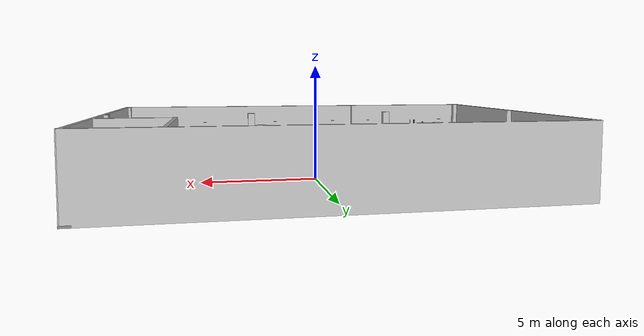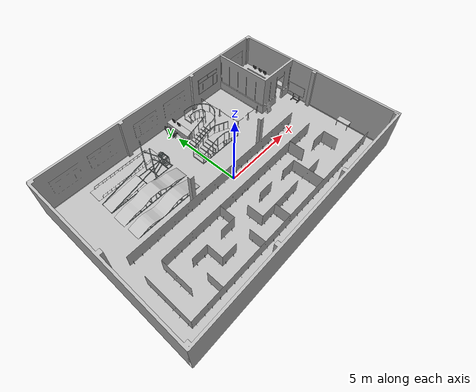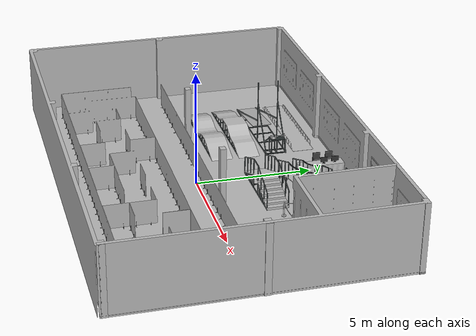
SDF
<?xml version="1.0" ?>
<sdf version="1.4">
  <model name="sai_di1">
    <link name="link1">
      <inertial>
        <mass>15</mass>
        <inertia>
          <ixx>0.0</ixx>
          <ixy>0.0</ixy>
          <ixz>0.0</ixz>
          <iyy>0.0</iyy>
          <iyz>0.0</iyz>
          <izz>0.0</izz>
        </inertia>
      </inertial>
      <collision name="collision1">
        <pose>0 0 0 0 0 0</pose>
        <geometry>
          <mesh>
            <uri>model://sai_di/meshes/sai_di1.dae</uri>
          </mesh>
        </geometry>
      </collision>
      <visual name="visual1">
        <pose>0 0 0 0 0 0</pose>
        <geometry>
          <mesh>
            <uri>model://sai_di/meshes/sai_di1.dae</uri>
          </mesh>
        </geometry>
      </visual>
    </link>

    <link name="link2">
      <inertial>
        <mass>5</mass>
        <inertia>
          <ixx>0.0</ixx>
          <ixy>0.0</ixy>
          <ixz>0.0</ixz>
          <iyy>0.0</iyy>
          <iyz>0.0</iyz>
          <izz>0.0</izz>
        </inertia>
      </inertial>
      <collision name="collision2">
        <pose>0 0 0 0 0 0</pose>
        <geometry>
          <mesh>
            <uri>model://sai_di/meshes/sai_di2.dae</uri>
          </mesh>
        </geometry>
      </collision>
      <visual name="visual2">
        <pose>0 0 0 0 0 0</pose>
        <geometry>
          <mesh>
            <uri>model://sai_di/meshes/sai_di2.dae</uri>
          </mesh>
        </geometry>
      </visual>
    </link>

  <link name="link3">
      <inertial>
        <mass>5</mass>
        <inertia>
          <ixx>0.0</ixx>
          <ixy>0.0</ixy>
          <ixz>0.0</ixz>
          <iyy>0.0</iyy>
          <iyz>0.0</iyz>
          <izz>0.0</izz>
        </inertia>
      </inertial>
      <collision name="collision3">
        <pose>0 0 0 0 0 0</pose>
        <geometry>
          <mesh>
            <uri>model://sai_di/meshes/sai_di3.dae</uri>
          </mesh>
        </geometry>
      </collision>
      <visual name="visual3">
        <pose>0 0 0 0 0 0</pose>
        <geometry>
          <mesh>
            <uri>model://sai_di/meshes/sai_di3.dae</uri>
          </mesh>
        </geometry>
      </visual>
    </link>

    <link name="link4">
      <inertial>
        <mass>5</mass>
        <inertia>
          <ixx>0.0</ixx>
          <ixy>0.0</ixy>
          <ixz>0.0</ixz>
          <iyy>0.0</iyy>
          <iyz>0.0</iyz>
          <izz>0.0</izz>
        </inertia>
      </inertial>
      <collision name="collision4">
        <pose>0 0 0 0 0 0</pose>
        <geometry>
          <mesh>
            <uri>model://sai_di/meshes/sai_di4.dae</uri>
          </mesh>
        </geometry>
      </collision>
      <visual name="visual4">
        <pose>0 0 0 0 0 0</pose>
        <geometry>
          <mesh>
            <uri>model://sai_di/meshes/sai_di4.dae</uri>
          </mesh>
        </geometry>
      </visual>
    </link>

    <static>1</static>
  </model>

</sdf>
